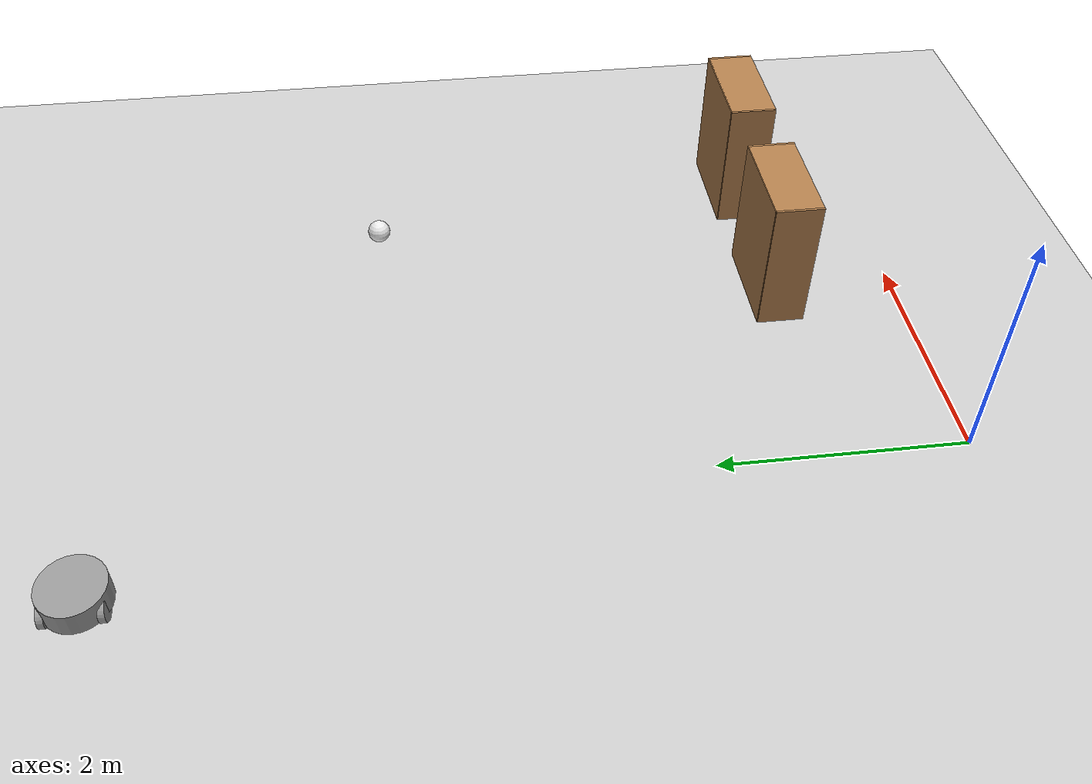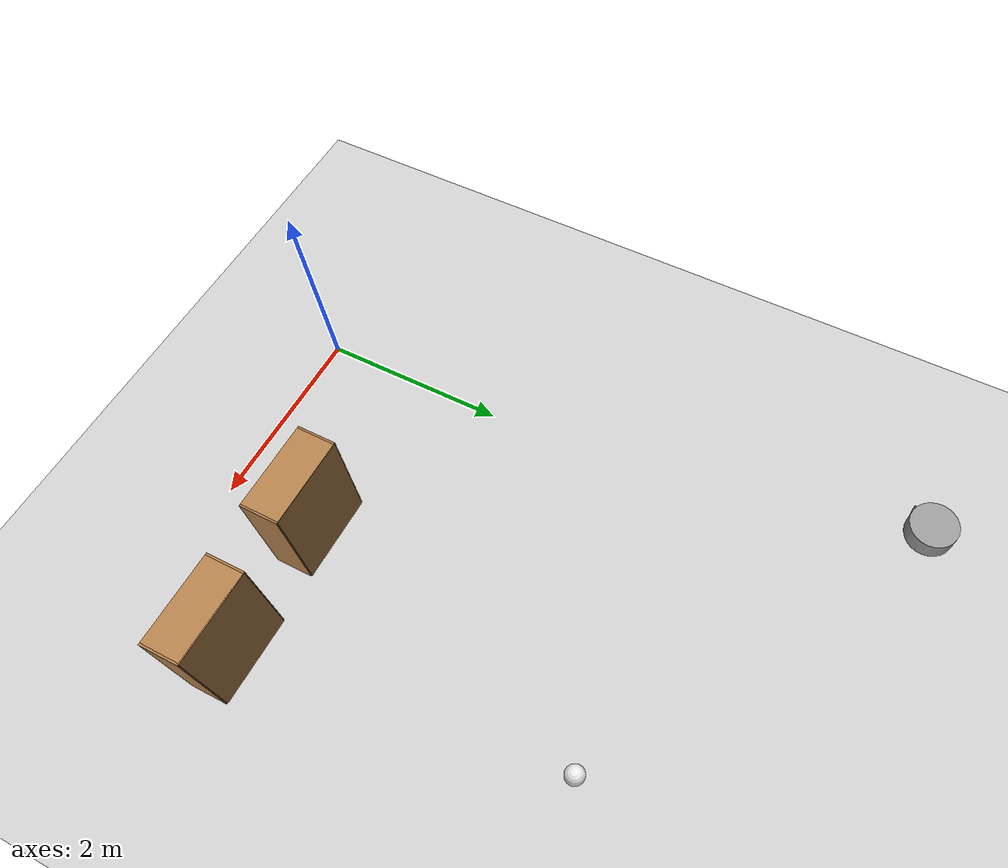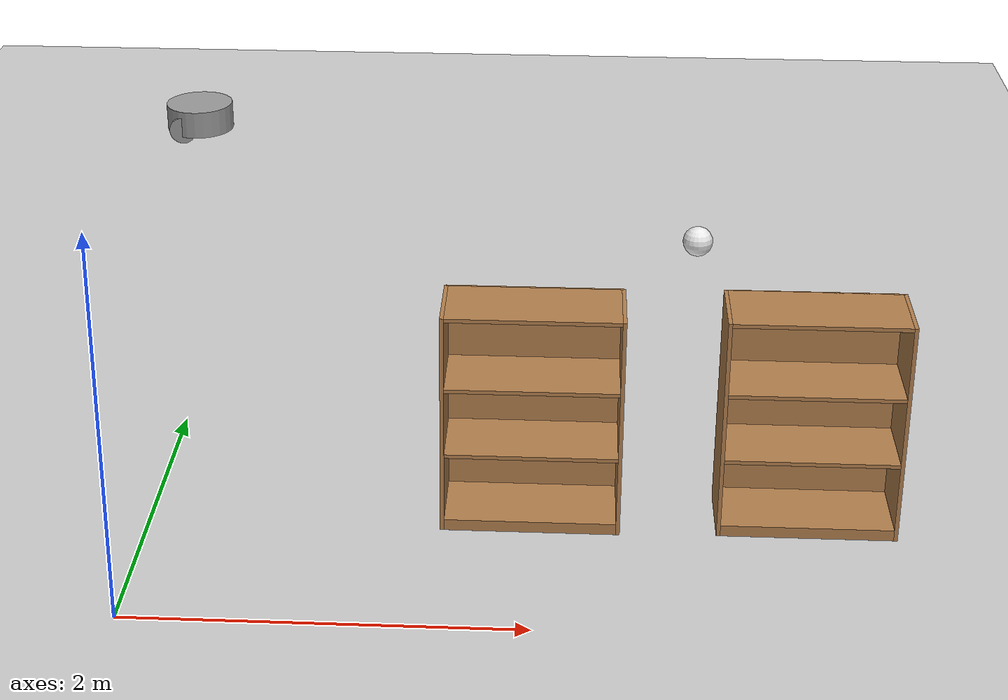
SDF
<sdf version="1.6">
 <world name="default">
  <model name="ground_plane">
   <static>1</static>
   <link name="link">
    <collision name="collision">
     <geometry><plane><normal>0 0 1</normal><size>100 100</size></plane></geometry>
     <surface>
      <contact><collide_bitmask>65535</collide_bitmask></contact>
      <friction><ode><mu>100</mu><mu2>50</mu2></ode></friction>
     </surface>
    </collision>
    <visual name="visual">
     <cast_shadows>0</cast_shadows>
     <geometry><plane><normal>0 0 1</normal><size>100 100</size></plane></geometry>
     <material>
      <script><uri>file://media/materials/scripts/gazebo.material</uri><name>Gazebo/Grey</name></script>
     </material>
    </visual>
   </link>
  </model>
  <model name="robot_0">
   <link name="link_0">
    <inertial>
     <mass>1</mass>
     <inertia><ixx>0.145833</ixx><ixy>0</ixy><ixz>0</ixz><iyy>0.145833</iyy><iyz>0</iyz><izz>0.125</izz></inertia>
    </inertial>
    <pose>-0.1 0.2 0.1 1.5708 -0 0</pose>
    <visual name="visual">
     <geometry><cylinder><radius>0.1</radius><length>0.05</length></cylinder></geometry>
     <material>
      <lighting>1</lighting>
      <script><uri>file://media/materials/scripts/gazebo.material</uri><name>Gazebo/Grey</name></script>
      <shader type="vertex"><normal_map>__default__</normal_map></shader>
      <ambient>0.3 0.3 0.3 1</ambient>
      <diffuse>0.7 0.7 0.7 1</diffuse>
      <specular>0.01 0.01 0.01 1</specular>
      <emissive>0 0 0 1</emissive>
     </material>
    </visual>
    <collision name="collision">
     <geometry><cylinder><radius>0.1</radius><length>0.05</length></cylinder></geometry>
     <surface>
      <friction>
       <ode><mu>1</mu><mu2>1</mu2><fdir1>0 0 0</fdir1><slip1>0</slip1><slip2>0</slip2></ode>
       <torsional>
        <coefficient>1</coefficient>
        <patch_radius>0</patch_radius>
        <surface_radius>0</surface_radius>
        <use_patch_radius>1</use_patch_radius>
        <ode><slip>0</slip></ode>
       </torsional>
      </friction>
      <bounce><restitution_coefficient>0</restitution_coefficient><threshold>1e+06</threshold></bounce>
      <contact>
       <collide_without_contact>0</collide_without_contact>
       <collide_without_contact_bitmask>1</collide_without_contact_bitmask>
       <collide_bitmask>1</collide_bitmask>
       <ode>
        <soft_cfm>0</soft_cfm>
        <soft_erp>0.2</soft_erp>
        <kp>1e+13</kp>
        <kd>1</kd>
        <max_vel>0.01</max_vel>
        <min_depth>0</min_depth>
       </ode>
       <bullet>
        <split_impulse>1</split_impulse>
        <split_impulse_penetration_threshold>-0.01</split_impulse_penetration_threshold>
        <soft_cfm>0</soft_cfm>
        <soft_erp>0.2</soft_erp>
        <kp>1e+13</kp>
        <kd>1</kd>
       </bullet>
      </contact>
     </surface>
    </collision>
   </link>
   <link name="link_0_clone">
    <inertial>
     <mass>1</mass>
     <inertia><ixx>0.145833</ixx><ixy>0</ixy><ixz>0</ixz><iyy>0.145833</iyy><iyz>0</iyz><izz>0.125</izz></inertia>
    </inertial>
    <pose>-0.1 -0.2 0.1 1.5708 -0 0</pose>
    <visual name="visual">
     <geometry><cylinder><radius>0.1</radius><length>0.05</length></cylinder></geometry>
     <material>
      <lighting>1</lighting>
      <script><uri>file://media/materials/scripts/gazebo.material</uri><name>Gazebo/Grey</name></script>
      <shader type="vertex"><normal_map>__default__</normal_map></shader>
      <ambient>0.3 0.3 0.3 1</ambient>
      <diffuse>0.7 0.7 0.7 1</diffuse>
      <specular>0.01 0.01 0.01 1</specular>
      <emissive>0 0 0 1</emissive>
     </material>
    </visual>
    <collision name="collision">
     <geometry><cylinder><radius>0.1</radius><length>0.05</length></cylinder></geometry>
     <surface>
      <friction>
       <ode><mu>1</mu><mu2>1</mu2><fdir1>0 0 0</fdir1><slip1>0</slip1><slip2>0</slip2></ode>
       <torsional>
        <coefficient>1</coefficient>
        <patch_radius>0</patch_radius>
        <surface_radius>0</surface_radius>
        <use_patch_radius>1</use_patch_radius>
        <ode><slip>0</slip></ode>
       </torsional>
      </friction>
      <bounce><restitution_coefficient>0</restitution_coefficient><threshold>1e+06</threshold></bounce>
      <contact>
       <collide_without_contact>0</collide_without_contact>
       <collide_without_contact_bitmask>1</collide_without_contact_bitmask>
       <collide_bitmask>1</collide_bitmask>
       <ode>
        <soft_cfm>0</soft_cfm>
        <soft_erp>0.2</soft_erp>
        <kp>1e+13</kp>
        <kd>1</kd>
        <max_vel>0.01</max_vel>
        <min_depth>0</min_depth>
       </ode>
       <bullet>
        <split_impulse>1</split_impulse>
        <split_impulse_penetration_threshold>-0.01</split_impulse_penetration_threshold>
        <soft_cfm>0</soft_cfm>
        <soft_erp>0.2</soft_erp>
        <kp>1e+13</kp>
        <kd>1</kd>
       </bullet>
      </contact>
     </surface>
    </collision>
   </link>
   <link name="link_1">
    <inertial>
     <mass>1</mass>
     <inertia><ixx>0.145833</ixx><ixy>0</ixy><ixz>0</ixz><iyy>0.145833</iyy><iyz>0</iyz><izz>0.125</izz></inertia>
    </inertial>
    <pose>-0 0 0.15 0 -0 0</pose>
    <visual name="visual">
     <geometry><cylinder><radius>0.25</radius><length>0.2</length></cylinder></geometry>
     <material>
      <lighting>1</lighting>
      <script><uri>file://media/materials/scripts/gazebo.material</uri><name>Gazebo/Grey</name></script>
      <shader type="vertex"><normal_map>__default__</normal_map></shader>
      <ambient>0.3 0.3 0.3 1</ambient>
      <diffuse>0.7 0.7 0.7 1</diffuse>
      <specular>0.01 0.01 0.01 1</specular>
      <emissive>0 0 0 1</emissive>
     </material>
    </visual>
    <collision name="collision">
     <geometry><cylinder><radius>0.25</radius><length>0.2</length></cylinder></geometry>
     <surface>
      <friction>
       <ode><mu>1</mu><mu2>1</mu2><fdir1>0 0 0</fdir1><slip1>0</slip1><slip2>0</slip2></ode>
       <torsional>
        <coefficient>1</coefficient>
        <patch_radius>0</patch_radius>
        <surface_radius>0</surface_radius>
        <use_patch_radius>1</use_patch_radius>
        <ode><slip>0</slip></ode>
       </torsional>
      </friction>
      <bounce><restitution_coefficient>0</restitution_coefficient><threshold>1e+06</threshold></bounce>
      <contact>
       <collide_without_contact>0</collide_without_contact>
       <collide_without_contact_bitmask>1</collide_without_contact_bitmask>
       <collide_bitmask>1</collide_bitmask>
       <ode>
        <soft_cfm>0</soft_cfm>
        <soft_erp>0.2</soft_erp>
        <kp>1e+13</kp>
        <kd>1</kd>
        <max_vel>0.01</max_vel>
        <min_depth>0</min_depth>
       </ode>
       <bullet>
        <split_impulse>1</split_impulse>
        <split_impulse_penetration_threshold>-0.01</split_impulse_penetration_threshold>
        <soft_cfm>0</soft_cfm>
        <soft_erp>0.2</soft_erp>
        <kp>1e+13</kp>
        <kd>1</kd>
       </bullet>
      </contact>
     </surface>
    </collision>
   </link>
   <link name="link_2">
    <inertial>
     <mass>1</mass>
     <inertia><ixx>0.1</ixx><ixy>0</ixy><ixz>0</ixz><iyy>0.1</iyy><iyz>0</iyz><izz>0.1</izz></inertia>
    </inertial>
    <pose>0.15 0 0.075 0 -0 0</pose>
    <visual name="visual">
     <geometry><sphere><radius>0.075</radius></sphere></geometry>
     <material>
      <lighting>1</lighting>
      <script><uri>file://media/materials/scripts/gazebo.material</uri><name>Gazebo/Grey</name></script>
      <shader type="vertex"><normal_map>__default__</normal_map></shader>
      <ambient>0.3 0.3 0.3 1</ambient>
      <diffuse>0.7 0.7 0.7 1</diffuse>
      <specular>0.01 0.01 0.01 1</specular>
      <emissive>0 0 0 1</emissive>
     </material>
    </visual>
    <collision name="collision">
     <geometry><sphere><radius>0.075</radius></sphere></geometry>
     <surface>
      <friction>
       <ode><mu>1</mu><mu2>1</mu2><fdir1>0 0 0</fdir1><slip1>0</slip1><slip2>0</slip2></ode>
       <torsional>
        <coefficient>1</coefficient>
        <patch_radius>0</patch_radius>
        <surface_radius>0</surface_radius>
        <use_patch_radius>1</use_patch_radius>
        <ode><slip>0</slip></ode>
       </torsional>
      </friction>
      <bounce><restitution_coefficient>0</restitution_coefficient><threshold>1e+06</threshold></bounce>
      <contact>
       <collide_without_contact>0</collide_without_contact>
       <collide_without_contact_bitmask>1</collide_without_contact_bitmask>
       <collide_bitmask>1</collide_bitmask>
       <ode>
        <soft_cfm>0</soft_cfm>
        <soft_erp>0.2</soft_erp>
        <kp>1e+13</kp>
        <kd>1</kd>
        <max_vel>0.01</max_vel>
        <min_depth>0</min_depth>
       </ode>
       <bullet>
        <split_impulse>1</split_impulse>
        <split_impulse_penetration_threshold>-0.01</split_impulse_penetration_threshold>
        <soft_cfm>0</soft_cfm>
        <soft_erp>0.2</soft_erp>
        <kp>1e+13</kp>
        <kd>1</kd>
       </bullet>
      </contact>
     </surface>
    </collision>
   </link>
   <joint name="link_1_JOINT_0" type="ball">
    <parent>link_1</parent>
    <child>link_2</child>
    <physics>
     <ode><limit><cfm>0</cfm><erp>0.2</erp></limit><suspension><cfm>0</cfm><erp>0.2</erp></suspension></ode>
    </physics>
   </joint>
   <joint name="link_1_JOINT_1" type="revolute">
    <parent>link_1</parent>
    <child>link_0_clone</child>
    <axis>
     <xyz>0 0 1</xyz>
     <use_parent_model_frame>0</use_parent_model_frame>
     <limit>
      <lower>-1.79769e+308</lower>
      <upper>1.79769e+308</upper>
      <effort>-1</effort>
      <velocity>-1</velocity>
     </limit>
     <dynamics>
      <spring_reference>0</spring_reference>
      <spring_stiffness>0</spring_stiffness>
      <damping>0</damping>
     </dynamics>
    </axis>
    <physics>
     <ode><limit><cfm>0</cfm><erp>0.2</erp></limit><suspension><cfm>0</cfm><erp>0.2</erp></suspension></ode>
    </physics>
   </joint>
   <joint name="link_1_JOINT_2" type="revolute">
    <parent>link_1</parent>
    <child>link_0</child>
    <axis>
     <xyz>0 0 1</xyz>
     <use_parent_model_frame>0</use_parent_model_frame>
     <limit>
      <lower>-1.79769e+308</lower>
      <upper>1.79769e+308</upper>
      <effort>-1</effort>
      <velocity>-1</velocity>
     </limit>
     <dynamics>
      <spring_reference>0</spring_reference>
      <spring_stiffness>0</spring_stiffness>
      <damping>0</damping>
     </dynamics>
    </axis>
    <physics>
     <ode><limit><cfm>0</cfm><erp>0.2</erp></limit><suspension><cfm>0</cfm><erp>0.2</erp></suspension></ode>
    </physics>
   </joint>
   <static>0</static>
   <pose>-0.705073 6.60513 0.001316 -1e-06 -0.013075 -0.000956</pose>
  </model>
  <model name="bookshelf">
   <static>1</static>
   <link name="link">
    <inertial><mass>1</mass></inertial>
    <collision name="back">
     <pose>0 0.005 0.6 0 -0 0</pose>
     <geometry><box><size>0.9 0.01 1.2</size></box></geometry>
    </collision>
    <visual name="visual1">
     <pose>0 0.005 0.6 0 -0 0</pose>
     <geometry><box><size>0.9 0.01 1.2</size></box></geometry>
     <material>
      <script><uri>file://media/materials/scripts/gazebo.material</uri><name>Gazebo/Wood</name></script>
     </material>
    </visual>
    <collision name="left_side">
     <pose>0.45 -0.195 0.6 0 -0 0</pose>
     <geometry><box><size>0.02 0.4 1.2</size></box></geometry>
    </collision>
    <visual name="visual2">
     <pose>0.45 -0.195 0.6 0 -0 0</pose>
     <geometry><box><size>0.02 0.4 1.2</size></box></geometry>
     <material>
      <script><uri>file://media/materials/scripts/gazebo.material</uri><name>Gazebo/Wood</name></script>
     </material>
    </visual>
    <collision name="right_side">
     <pose>-0.45 -0.195 0.6 0 -0 0</pose>
     <geometry><box><size>0.02 0.4 1.2</size></box></geometry>
    </collision>
    <visual name="visual3">
     <pose>-0.45 -0.195 0.6 0 -0 0</pose>
     <geometry><box><size>0.02 0.4 1.2</size></box></geometry>
     <material>
      <script><uri>file://media/materials/scripts/gazebo.material</uri><name>Gazebo/Wood</name></script>
     </material>
    </visual>
    <collision name="bottom">
     <pose>0 -0.195 0.03 0 -0 0</pose>
     <geometry><box><size>0.88 0.4 0.06</size></box></geometry>
    </collision>
    <visual name="visual4">
     <pose>0 -0.195 0.03 0 -0 0</pose>
     <geometry><box><size>0.88 0.4 0.06</size></box></geometry>
     <material>
      <script><uri>file://media/materials/scripts/gazebo.material</uri><name>Gazebo/Wood</name></script>
     </material>
    </visual>
    <collision name="top">
     <pose>0 -0.195 1.19 0 -0 0</pose>
     <geometry><box><size>0.88 0.4 0.02</size></box></geometry>
    </collision>
    <visual name="visual5">
     <pose>0 -0.195 1.19 0 -0 0</pose>
     <geometry><box><size>0.88 0.4 0.02</size></box></geometry>
     <material>
      <script><uri>file://media/materials/scripts/gazebo.material</uri><name>Gazebo/Wood</name></script>
     </material>
    </visual>
    <collision name="low_shelf">
     <pose>0 -0.195 0.43 0 -0 0</pose>
     <geometry><box><size>0.88 0.4 0.02</size></box></geometry>
    </collision>
    <visual name="visual6">
     <pose>0 -0.195 0.43 0 -0 0</pose>
     <geometry><box><size>0.88 0.4 0.02</size></box></geometry>
     <material>
      <script><uri>file://media/materials/scripts/gazebo.material</uri><name>Gazebo/Wood</name></script>
     </material>
    </visual>
    <collision name="high_shelf">
     <pose>0 -0.195 0.8 0 -0 0</pose>
     <geometry><box><size>0.88 0.4 0.02</size></box></geometry>
    </collision>
    <visual name="visual7">
     <pose>0 -0.195 0.8 0 -0 0</pose>
     <geometry><box><size>0.88 0.4 0.02</size></box></geometry>
     <material>
      <script><uri>file://media/materials/scripts/gazebo.material</uri><name>Gazebo/Wood</name></script>
     </material>
    </visual>
   </link>
   <pose>1.9687 1.28414 0 0 -0 0</pose>
  </model>
  <model name="bookshelf_0">
   <static>1</static>
   <link name="link">
    <inertial><mass>1</mass></inertial>
    <collision name="back">
     <pose>0 0.005 0.6 0 -0 0</pose>
     <geometry><box><size>0.9 0.01 1.2</size></box></geometry>
    </collision>
    <visual name="visual1">
     <pose>0 0.005 0.6 0 -0 0</pose>
     <geometry><box><size>0.9 0.01 1.2</size></box></geometry>
     <material>
      <script><uri>file://media/materials/scripts/gazebo.material</uri><name>Gazebo/Wood</name></script>
     </material>
    </visual>
    <collision name="left_side">
     <pose>0.45 -0.195 0.6 0 -0 0</pose>
     <geometry><box><size>0.02 0.4 1.2</size></box></geometry>
    </collision>
    <visual name="visual2">
     <pose>0.45 -0.195 0.6 0 -0 0</pose>
     <geometry><box><size>0.02 0.4 1.2</size></box></geometry>
     <material>
      <script><uri>file://media/materials/scripts/gazebo.material</uri><name>Gazebo/Wood</name></script>
     </material>
    </visual>
    <collision name="right_side">
     <pose>-0.45 -0.195 0.6 0 -0 0</pose>
     <geometry><box><size>0.02 0.4 1.2</size></box></geometry>
    </collision>
    <visual name="visual3">
     <pose>-0.45 -0.195 0.6 0 -0 0</pose>
     <geometry><box><size>0.02 0.4 1.2</size></box></geometry>
     <material>
      <script><uri>file://media/materials/scripts/gazebo.material</uri><name>Gazebo/Wood</name></script>
     </material>
    </visual>
    <collision name="bottom">
     <pose>0 -0.195 0.03 0 -0 0</pose>
     <geometry><box><size>0.88 0.4 0.06</size></box></geometry>
    </collision>
    <visual name="visual4">
     <pose>0 -0.195 0.03 0 -0 0</pose>
     <geometry><box><size>0.88 0.4 0.06</size></box></geometry>
     <material>
      <script><uri>file://media/materials/scripts/gazebo.material</uri><name>Gazebo/Wood</name></script>
     </material>
    </visual>
    <collision name="top">
     <pose>0 -0.195 1.19 0 -0 0</pose>
     <geometry><box><size>0.88 0.4 0.02</size></box></geometry>
    </collision>
    <visual name="visual5">
     <pose>0 -0.195 1.19 0 -0 0</pose>
     <geometry><box><size>0.88 0.4 0.02</size></box></geometry>
     <material>
      <script><uri>file://media/materials/scripts/gazebo.material</uri><name>Gazebo/Wood</name></script>
     </material>
    </visual>
    <collision name="low_shelf">
     <pose>0 -0.195 0.43 0 -0 0</pose>
     <geometry><box><size>0.88 0.4 0.02</size></box></geometry>
    </collision>
    <visual name="visual6">
     <pose>0 -0.195 0.43 0 -0 0</pose>
     <geometry><box><size>0.88 0.4 0.02</size></box></geometry>
     <material>
      <script><uri>file://media/materials/scripts/gazebo.material</uri><name>Gazebo/Wood</name></script>
     </material>
    </visual>
    <collision name="high_shelf">
     <pose>0 -0.195 0.8 0 -0 0</pose>
     <geometry><box><size>0.88 0.4 0.02</size></box></geometry>
    </collision>
    <visual name="visual7">
     <pose>0 -0.195 0.8 0 -0 0</pose>
     <geometry><box><size>0.88 0.4 0.02</size></box></geometry>
     <material>
      <script><uri>file://media/materials/scripts/gazebo.material</uri><name>Gazebo/Wood</name></script>
     </material>
    </visual>
   </link>
   <pose>3.38245 1.3038 0 0 -0 0</pose>
  </model>
  <model name="my_ball">
   <link name="link_0">
    <inertial>
     <mass>1</mass>
     <inertia><ixx>0.1</ixx><ixy>0</ixy><ixz>0</ixz><iyy>0.1</iyy><iyz>0</iyz><izz>0.1</izz></inertia>
    </inertial>
    <visual name="visual">
     <geometry><sphere><radius>0.1</radius></sphere></geometry>
     <material>
      <lighting>1</lighting>
      <script><uri>file://media/materials/scripts/gazebo.material</uri><name>Gazebo/White</name></script>
      <ambient>1 1 1 1</ambient>
      <diffuse>1 1 1 1</diffuse>
      <specular>1 1 1 1</specular>
      <emissive>1 1 1 1</emissive>
      <shader type="vertex"><normal_map>__default__</normal_map></shader>
     </material>
    </visual>
    <collision name="collision">
     <geometry><sphere><radius>0.1</radius></sphere></geometry>
     <surface>
      <friction>
       <ode><mu>1</mu><mu2>1</mu2><fdir1>0 0 0</fdir1><slip1>0</slip1><slip2>0</slip2></ode>
       <torsional>
        <coefficient>1</coefficient>
        <patch_radius>0</patch_radius>
        <surface_radius>0</surface_radius>
        <use_patch_radius>1</use_patch_radius>
        <ode><slip>0</slip></ode>
       </torsional>
      </friction>
      <bounce><restitution_coefficient>0</restitution_coefficient><threshold>1e+06</threshold></bounce>
      <contact>
       <collide_without_contact>0</collide_without_contact>
       <collide_without_contact_bitmask>1</collide_without_contact_bitmask>
       <collide_bitmask>1</collide_bitmask>
       <ode>
        <soft_cfm>0</soft_cfm>
        <soft_erp>0.2</soft_erp>
        <kp>1e+13</kp>
        <kd>1</kd>
        <max_vel>0.01</max_vel>
        <min_depth>0</min_depth>
       </ode>
       <bullet>
        <split_impulse>1</split_impulse>
        <split_impulse_penetration_threshold>-0.01</split_impulse_penetration_threshold>
        <soft_cfm>0</soft_cfm>
        <soft_erp>0.2</soft_erp>
        <kp>1e+13</kp>
        <kd>1</kd>
       </bullet>
      </contact>
     </surface>
    </collision>
   </link>
   <static>0</static>
   <pose>2.99368 4.48514 0.1 0 -0 0</pose>
  </model>
 </world>
</sdf>
